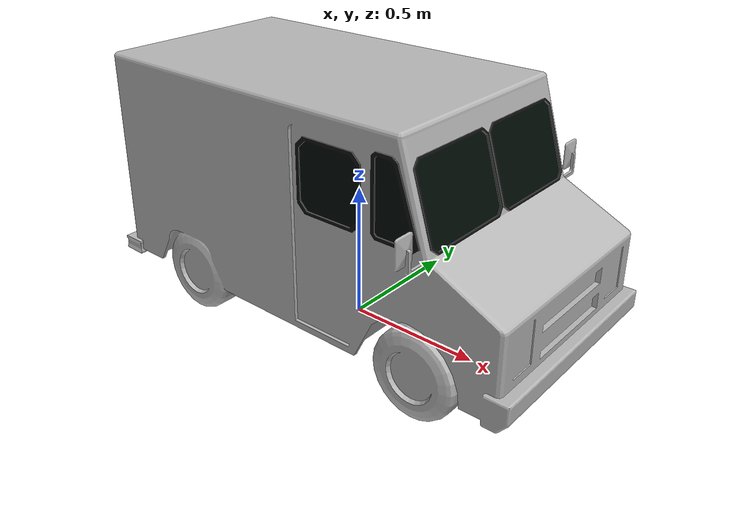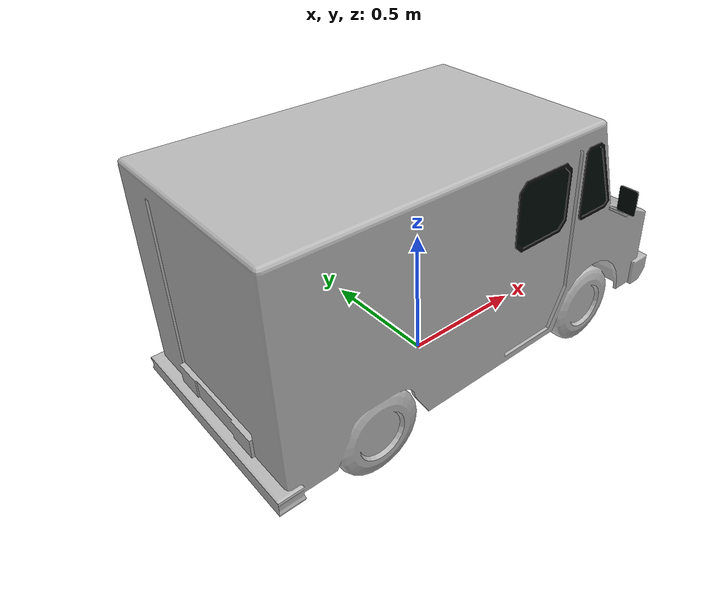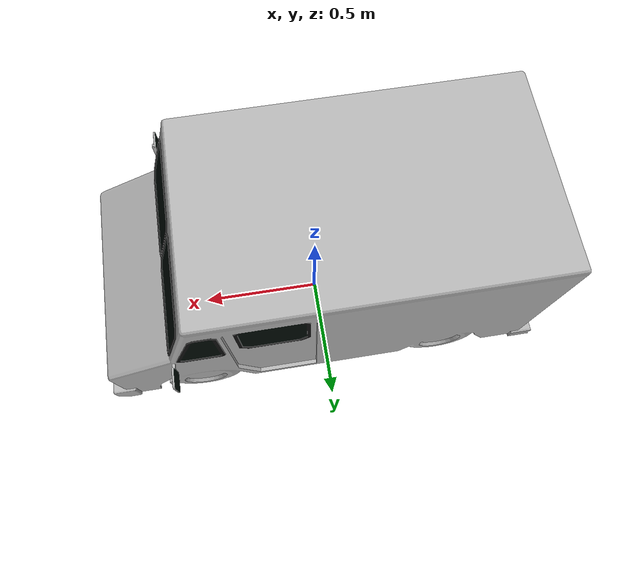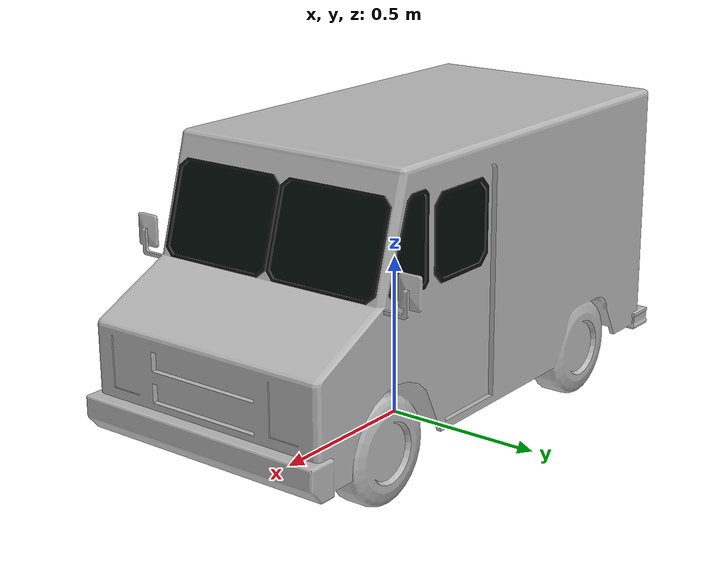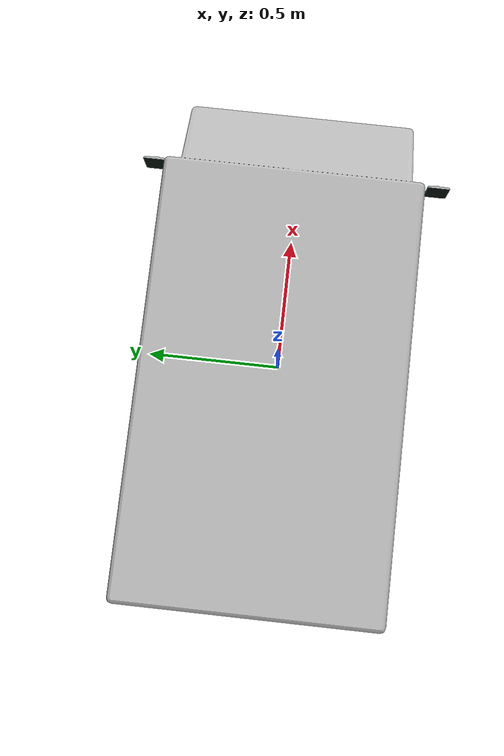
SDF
<?xml version="1.0" ?>
<sdf version="1.5">
  <model name="UB Truck">
    <pose>0 0 0 0 0 0</pose>
    <static>true</static>
    <link name="link">
      <gravity>0</gravity>
      <collision name="collision">
        <geometry>
          <mesh>
            <uri>model://ub_truck/meshes/ub_truck.dae</uri>
            <scale>1 1 1</scale>
          </mesh>
        </geometry>
      </collision>
      <visual name="visual">
        <geometry>
          <mesh>
            <uri>model://ub_truck/meshes/ub_truck.dae</uri>
            <scale>1 1 1</scale>
          </mesh>
        </geometry>
      </visual>
    </link>
  </model>
</sdf>
